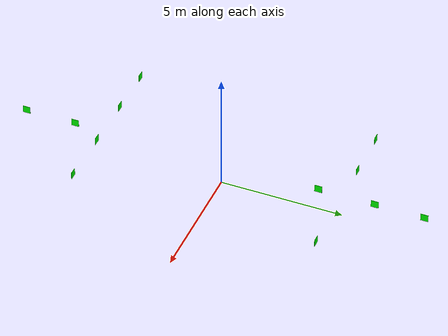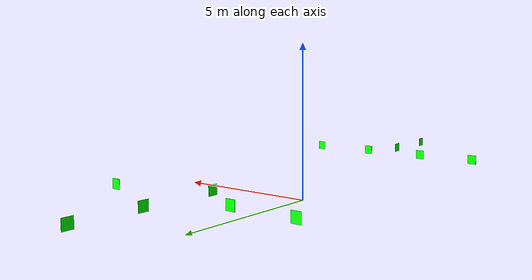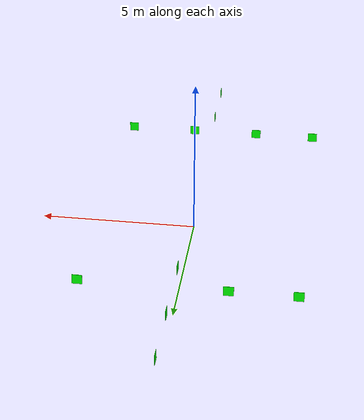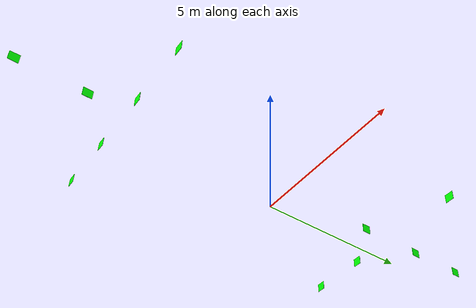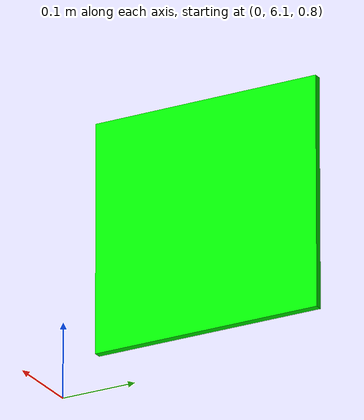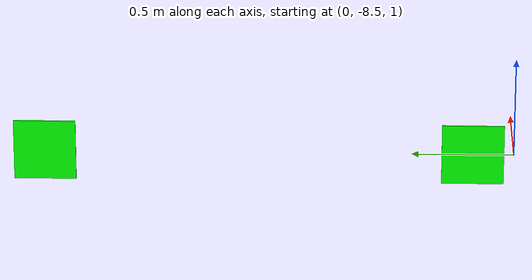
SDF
<?xml version="1.0" encoding="utf-8"?>
<sdf version="1.6">
  <model name="traffic_sign">
  	<static>1</static>

		<link name='traffic_sign_support1'>
			<pose>2.8 5 1 1.57 -0 0</pose>
			<visual name='visual1'>
				<pose>0 0 0 0 0 0</pose>
				<material>
				  <ambient>0 1 0 1</ambient>
				  <diffuse>0 1 0 1</diffuse>
				</material>
				<geometry>
				  <box>
				    <size>0.305 0.305 0.01</size>
				  </box>
				</geometry>
				<material>
					<ambient>1 0 0 1</ambient>
					<diffuse>1 0 0 1</diffuse>
					<specular>0.1 0.1 0.1 1</specular>
					<emissive>0 0 0 0</emissive>
				</material>
				<plugin name="traffic_sign_controller1" filename='libgazebo_ros_video.so'>
					<robotNamespace>traffic_sign_1</robotNamespace>
					<topicName>image</topicName>
					<height>120</height>
					<width>160</width>
				</plugin>
			</visual>
		</link>

		<link name='traffic_sign_support2'>
			<pose>0 8.3 1 1.57 0 1.57</pose>
			<visual name='visual2'>
				<pose>0 0 0 0 0 0</pose>
				<material>
				  <ambient>0 1 0 1</ambient>
				  <diffuse>0 1 0 1</diffuse>
				</material>
				<geometry>
				  <box>
				    <size>0.305 0.305 0.01</size>
				  </box>
				</geometry>
				<material>
					<ambient>1 0 0 1</ambient>
					<diffuse>1 0 0 1</diffuse>
					<specular>0.1 0.1 0.1 1</specular>
					<emissive>0 0 0 0</emissive>
				</material>
				<plugin name="traffic_sign_controller2" filename='libgazebo_ros_video.so'>
					<robotNamespace>traffic_sign_2</robotNamespace>
					<topicName>image</topicName>
					<height>120</height>
					<width>160</width>
				</plugin>
			</visual>
		</link>

		<link name='traffic_sign_support3'>
			<pose>-3.6 5 1 1.57 0 3.14</pose>
			<visual name='visual3'>
				<pose>0 0 0 0 0 0</pose>
				<material>
				  <ambient>0 1 0 1</ambient>
				  <diffuse>0 1 0 1</diffuse>
				</material>
				<geometry>
				  <box>
				    <size>0.305 0.305 0.01</size>
				  </box>
				</geometry>
				<material>
					<ambient>1 0 0 1</ambient>
					<diffuse>1 0 0 1</diffuse>
					<specular>0.1 0.1 0.1 1</specular>
					<emissive>0 0 0 0</emissive>
				</material>
				<plugin name="traffic_sign_controller3" filename='libgazebo_ros_video.so'>
					<robotNamespace>traffic_sign_3</robotNamespace>
					<topicName>image</topicName>
					<height>120</height>
					<width>160</width>
				</plugin>
			</visual>
		</link>

		<link name='traffic_sign_support4'>
			<pose>-3.6 -5 1 1.57 0 3.14</pose>
			<visual name='visual4'>
				<pose>0 0 0 0 0 0</pose>
				<material>
				  <ambient>0 1 0 1</ambient>
				  <diffuse>0 1 0 1</diffuse>
				</material>
				<geometry>
				  <box>
				    <size>0.305 0.305 0.01</size>
				  </box>
				</geometry>
				<material>
					<ambient>1 0 0 1</ambient>
					<diffuse>1 0 0 1</diffuse>
					<specular>0.1 0.1 0.1 1</specular>
					<emissive>0 0 0 0</emissive>
				</material>
				<plugin name="traffic_sign_controller4" filename='libgazebo_ros_video.so'>
					<robotNamespace>traffic_sign_4</robotNamespace>
					<topicName>image</topicName>
					<height>120</height>
					<width>160</width>
				</plugin>
			</visual>
		</link>

		<link name='traffic_sign_support5'>
			<pose>0 -8.3 1 1.57 0 -1.57</pose>
			<visual name='visual5'>
				<pose>0 0 0 0 0 0</pose>
				<material>
				  <ambient>0 1 0 1</ambient>
				  <diffuse>0 1 0 1</diffuse>
				</material>
				<geometry>
				  <box>
				    <size>0.305 0.305 0.01</size>
				  </box>
				</geometry>
				<material>
					<ambient>1 0 0 1</ambient>
					<diffuse>1 0 0 1</diffuse>
					<specular>0.1 0.1 0.1 1</specular>
					<emissive>0 0 0 0</emissive>
				</material>
				<plugin name="traffic_sign_controller5" filename='libgazebo_ros_video.so'>
					<robotNamespace>traffic_sign_5</robotNamespace>
					<topicName>image</topicName>
					<height>120</height>
					<width>160</width>
				</plugin>
			</visual>
		</link>

    <link name='traffic_sign_support6'>
			<pose>2.8 -5 1 1.57 -0 0</pose>
			<visual name='visual6'>
				<pose>0 0 0 0 0 0</pose>
				<material>
				  <ambient>0 1 0 1</ambient>
				  <diffuse>0 1 0 1</diffuse>
				</material>
				<geometry>
				  <box>
				    <size>0.305 0.305 0.01</size>
				  </box>
				</geometry>
				<material>
					<ambient>1 0 0 1</ambient>
					<diffuse>1 0 0 1</diffuse>
					<specular>0.1 0.1 0.1 1</specular>
					<emissive>0 0 0 0</emissive>
				</material>
				<plugin name="traffic_sign_controller6" filename='libgazebo_ros_video.so'>
					<robotNamespace>traffic_sign_6</robotNamespace>
					<topicName>image</topicName>
					<height>120</height>
					<width>160</width>
				</plugin>
			</visual>
		</link>

		<link name='traffic_sign_support7'>
			<pose>0 4 1 1.57 0 1.57</pose>
			<visual name='visual7'>
				<pose>0 0 0 0 0 0</pose>
				<material>
				  <ambient>0 1 0 1</ambient>
				  <diffuse>0 1 0 1</diffuse>
				</material>
				<geometry>
				  <box>
				    <size>0.305 0.305 0.01</size>
				  </box>
				</geometry>
				<material>
					<ambient>1 0 0 1</ambient>
					<diffuse>1 0 0 1</diffuse>
					<specular>0.1 0.1 0.1 1</specular>
					<emissive>0 0 0 0</emissive>
				</material>
				<plugin name="traffic_sign_controller7" filename='libgazebo_ros_video.so'>
					<robotNamespace>traffic_sign_7</robotNamespace>
					<topicName>image</topicName>
					<height>120</height>
					<width>160</width>
				</plugin>
			</visual>
		</link>

		<link name='traffic_sign_support8'>
			<pose>-1.6 5 1 1.57 -0 0</pose>
			<visual name='visual8'>
				<pose>0 0 0 0 0 0</pose>
				<material>
				  <ambient>0 1 0 1</ambient>
				  <diffuse>0 1 0 1</diffuse>
				</material>
				<geometry>
				  <box>
				    <size>0.305 0.305 0.01</size>
				  </box>
				</geometry>
				<material>
					<ambient>1 0 0 1</ambient>
					<diffuse>1 0 0 1</diffuse>
					<specular>0.1 0.1 0.1 1</specular>
					<emissive>0 0 0 0</emissive>
				</material>
				<plugin name="traffic_sign_controller8" filename='libgazebo_ros_video.so'>
					<robotNamespace>traffic_sign_8</robotNamespace>
					<topicName>image</topicName>
					<height>120</height>
					<width>160</width>
				</plugin>
			</visual>
		</link>

		<link name='traffic_sign_support9'>
			<pose>0 6.3 1 1.57 0 -1.57</pose>
			<visual name='visual9'>
				<pose>0 0 0 0 0 0</pose>
				<material>
				  <ambient>0 1 0 1</ambient>
				  <diffuse>0 1 0 1</diffuse>
				</material>
				<geometry>
				  <box>
				    <size>0.305 0.305 0.01</size>
				  </box>
				</geometry>
				<material>
					<ambient>1 0 0 1</ambient>
					<diffuse>1 0 0 1</diffuse>
					<specular>0.1 0.1 0.1 1</specular>
					<emissive>0 0 0 0</emissive>
				</material>
				<plugin name="traffic_sign_controller9" filename='libgazebo_ros_video.so'>
					<robotNamespace>traffic_sign_9</robotNamespace>
					<topicName>image</topicName>
					<height>120</height>
					<width>160</width>
				</plugin>
			</visual>
		</link>

    <link name='traffic_sign_support10'>
			<pose>0.6 -5 1 1.57 0 3.14</pose>
			<visual name='visual10'>
				<pose>0 0 0 0 0 0</pose>
				<material>
				  <ambient>0 1 0 1</ambient>
				  <diffuse>0 1 0 1</diffuse>
				</material>
				<geometry>
				  <box>
				    <size>0.305 0.305 0.01</size>
				  </box>
				</geometry>
				<material>
					<ambient>1 0 0 1</ambient>
					<diffuse>1 0 0 1</diffuse>
					<specular>0.1 0.1 0.1 1</specular>
					<emissive>0 0 0 0</emissive>
				</material>
				<plugin name="traffic_sign_controller10" filename='libgazebo_ros_video.so'>
					<robotNamespace>traffic_sign_10</robotNamespace>
					<topicName>image</topicName>
					<height>120</height>
					<width>160</width>
				</plugin>
			</visual>
		</link>

		<link name='traffic_sign_support11'>
			<pose>0 -6.2 1 1.57 0 1.57</pose>
			<visual name='visual11'>
				<pose>0 0 0 0 0 0</pose>
				<material>
				  <ambient>0 1 0 1</ambient>
				  <diffuse>0 1 0 1</diffuse>
				</material>
				<geometry>
				  <box>
				    <size>0.305 0.305 0.01</size>
				  </box>
				</geometry>
				<material>
					<ambient>1 0 0 1</ambient>
					<diffuse>1 0 0 1</diffuse>
					<specular>0.1 0.1 0.1 1</specular>
					<emissive>0 0 0 0</emissive>
				</material>
				<plugin name="traffic_sign_controller11" filename='libgazebo_ros_video.so'>
					<robotNamespace>traffic_sign_11</robotNamespace>
					<topicName>image</topicName>
					<height>120</height>
					<width>160</width>
				</plugin>
			</visual>
		</link>

    <link name='traffic_sign_support12'>
			<pose>-1.6 -5 1 1.57 0 0</pose>
			<visual name='visual12'>
				<pose>0 0 0 0 0 0</pose>
				<material>
				  <ambient>0 1 0 1</ambient>
				  <diffuse>0 1 0 1</diffuse>
				</material>
				<geometry>
				  <box>
				    <size>0.305 0.305 0.01</size>
				  </box>
				</geometry>
				<material>
					<ambient>1 0 0 1</ambient>
					<diffuse>1 0 0 1</diffuse>
					<specular>0.1 0.1 0.1 1</specular>
					<emissive>0 0 0 0</emissive>
				</material>
				<plugin name="traffic_sign_controller12" filename='libgazebo_ros_video.so'>
					<robotNamespace>traffic_sign_12</robotNamespace>
					<topicName>image</topicName>
					<height>120</height>
					<width>160</width>
				</plugin>
			</visual>
		</link>

  </model>
</sdf>
